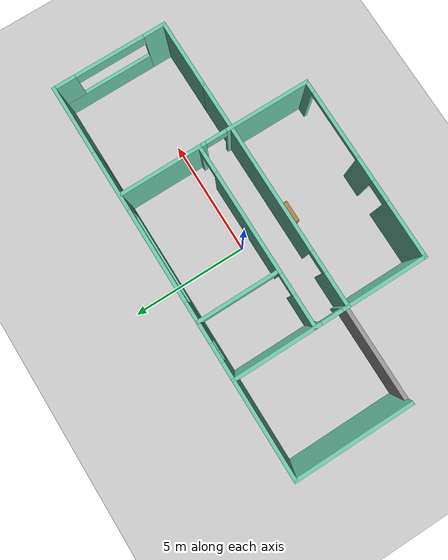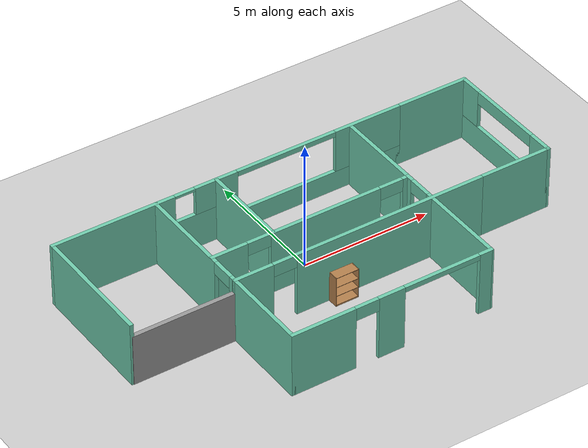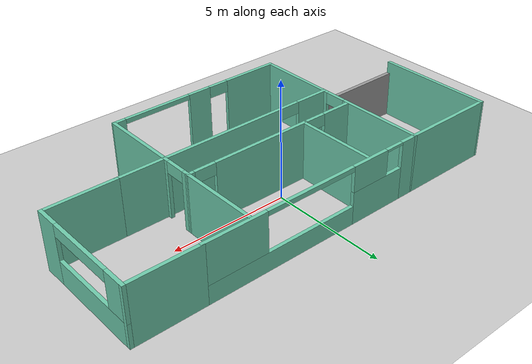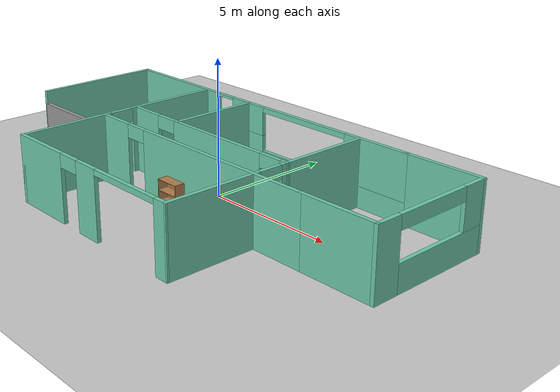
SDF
<sdf version="1.6">
 <world name="default">
  <model name="ground_plane">
   <static>1</static>
   <link name="link">
    <collision name="collision">
     <geometry><plane><normal>0 0 1</normal><size>100 100</size></plane></geometry>
     <surface>
      <contact><collide_bitmask>65535</collide_bitmask></contact>
      <friction><ode><mu>100</mu><mu2>50</mu2></ode></friction>
     </surface>
    </collision>
    <visual name="visual">
     <cast_shadows>0</cast_shadows>
     <geometry><plane><normal>0 0 1</normal><size>100 100</size></plane></geometry>
     <material>
      <script><uri>file://media/materials/scripts/gazebo.material</uri><name>Gazebo/Grey</name></script>
     </material>
    </visual>
   </link>
  </model>
  <model name="mybuilding">
   <pose>0.33074 -1.16282 0 0 -0 0</pose>
   <link name="Door_2">
    <collision name="Door_2_Collision">
     <geometry><box><size>4 0.17 2</size></box></geometry>
     <pose>0 0 1 0 -0 0</pose>
    </collision>
    <visual name="Door_2_Visual">
     <pose>0 0 1 0 -0 0</pose>
     <geometry><box><size>4 0.17 2</size></box></geometry>
     <material>
      <script><uri>file://media/materials/scripts/gazebo.material</uri><name>Gazebo/Grey</name></script>
     </material>
    </visual>
    <pose>-6.34759 -0.757622 0 0 -0 0</pose>
   </link>
   <link name="Wall_0">
    <collision name="Wall_0_Collision">
     <geometry><box><size>5 0.15 2.5</size></box></geometry>
     <pose>0 0 1.25 0 -0 0</pose>
    </collision>
    <visual name="Wall_0_Visual">
     <pose>0 0 1.25 0 -0 0</pose>
     <geometry><box><size>5 0.15 2.5</size></box></geometry>
     <material>
      <script><uri>file://media/materials/scripts/gazebo.material</uri><name>Gazebo/Grey</name></script>
      <ambient>0.435294 0.796078 0.67451 1</ambient>
     </material>
     <meta><layer>0</layer></meta>
    </visual>
    <pose>-8.35 1.67511 0 0 0 -1.5708</pose>
   </link>
   <link name="Wall_10">
    <pose>-0.425 -4.09989 0 0 -0 0</pose>
    <visual name="Wall_10_Visual_0">
     <pose>-2.74578 0 1.25 0 -0 0</pose>
     <geometry><box><size>2.50844 0.15 2.5</size></box></geometry>
     <material>
      <script><uri>file://media/materials/scripts/gazebo.material</uri><name>Gazebo/Grey</name></script>
      <ambient>0.435294 0.796078 0.67451 1</ambient>
     </material>
     <meta><layer>0</layer></meta>
    </visual>
    <collision name="Wall_10_Collision_0">
     <geometry><box><size>2.50844 0.15 2.5</size></box></geometry>
     <pose>-2.74578 0 1.25 0 -0 0</pose>
    </collision>
    <visual name="Wall_10_Visual_1">
     <pose>-0.076945 0 1.25 0 -0 0</pose>
     <geometry><box><size>1.02922 0.15 2.5</size></box></geometry>
     <material>
      <script><uri>file://media/materials/scripts/gazebo.material</uri><name>Gazebo/Grey</name></script>
      <ambient>0.435294 0.796078 0.67451 1</ambient>
     </material>
     <meta><layer>0</layer></meta>
    </visual>
    <collision name="Wall_10_Collision_1">
     <geometry><box><size>1.02922 0.15 2.5</size></box></geometry>
     <pose>-0.076945 0 1.25 0 -0 0</pose>
    </collision>
    <visual name="Wall_10_Visual_2">
     <pose>3.71883 0 1.25 0 -0 0</pose>
     <geometry><box><size>0.562334 0.15 2.5</size></box></geometry>
     <material>
      <script><uri>file://media/materials/scripts/gazebo.material</uri><name>Gazebo/Grey</name></script>
      <ambient>0.435294 0.796078 0.67451 1</ambient>
     </material>
     <meta><layer>0</layer></meta>
    </visual>
    <collision name="Wall_10_Collision_2">
     <geometry><box><size>0.562334 0.15 2.5</size></box></geometry>
     <pose>3.71883 0 1.25 0 -0 0</pose>
    </collision>
    <visual name="Wall_10_Visual_3">
     <pose>-1.04156 0 2.25 0 -0 0</pose>
     <geometry><box><size>0.9 0.15 0.5</size></box></geometry>
     <material>
      <script><uri>file://media/materials/scripts/gazebo.material</uri><name>Gazebo/Grey</name></script>
      <ambient>0.435294 0.796078 0.67451 1</ambient>
     </material>
     <meta><layer>0</layer></meta>
    </visual>
    <collision name="Wall_10_Collision_3">
     <geometry><box><size>0.9 0.15 0.5</size></box></geometry>
     <pose>-1.04156 0 2.25 0 -0 0</pose>
    </collision>
    <visual name="Wall_10_Visual_4">
     <pose>1.93767 0 2.4 0 -0 0</pose>
     <geometry><box><size>3 0.15 0.2</size></box></geometry>
     <material>
      <script><uri>file://media/materials/scripts/gazebo.material</uri><name>Gazebo/Grey</name></script>
      <ambient>0.435294 0.796078 0.67451 1</ambient>
     </material>
     <meta><layer>0</layer></meta>
    </visual>
    <collision name="Wall_10_Collision_4">
     <geometry><box><size>3 0.15 0.2</size></box></geometry>
     <pose>1.93767 0 2.4 0 -0 0</pose>
    </collision>
   </link>
   <link name="Wall_14">
    <pose>-0.411 0.65011 0 0 -0 0</pose>
    <visual name="Wall_14_Visual_0">
     <pose>-3.28166 0 1.25 0 -0 0</pose>
     <geometry><box><size>1.43667 0.15 2.5</size></box></geometry>
     <material>
      <script><uri>file://media/materials/scripts/gazebo.material</uri><name>Gazebo/Grey</name></script>
      <ambient>0.435294 0.796078 0.67451 1</ambient>
     </material>
     <meta><layer>0</layer></meta>
    </visual>
    <collision name="Wall_14_Collision_0">
     <geometry><box><size>1.43667 0.15 2.5</size></box></geometry>
     <pose>-3.28166 0 1.25 0 -0 0</pose>
    </collision>
    <visual name="Wall_14_Visual_1">
     <pose>0.543845 0 1.25 0 -0 0</pose>
     <geometry><box><size>4.41435 0.15 2.5</size></box></geometry>
     <material>
      <script><uri>file://media/materials/scripts/gazebo.material</uri><name>Gazebo/Grey</name></script>
      <ambient>0.435294 0.796078 0.67451 1</ambient>
     </material>
     <meta><layer>0</layer></meta>
    </visual>
    <collision name="Wall_14_Collision_1">
     <geometry><box><size>4.41435 0.15 2.5</size></box></geometry>
     <pose>0.543845 0 1.25 0 -0 0</pose>
    </collision>
    <visual name="Wall_14_Visual_2">
     <pose>3.8342 0 1.25 0 -0 0</pose>
     <geometry><box><size>0.33159 0.15 2.5</size></box></geometry>
     <material>
      <script><uri>file://media/materials/scripts/gazebo.material</uri><name>Gazebo/Grey</name></script>
      <ambient>0.435294 0.796078 0.67451 1</ambient>
     </material>
     <meta><layer>0</layer></meta>
    </visual>
    <collision name="Wall_14_Collision_2">
     <geometry><box><size>0.33159 0.15 2.5</size></box></geometry>
     <pose>3.8342 0 1.25 0 -0 0</pose>
    </collision>
    <visual name="Wall_14_Visual_3">
     <pose>-2.11333 0 2.25 0 -0 0</pose>
     <geometry><box><size>0.9 0.15 0.5</size></box></geometry>
     <material>
      <script><uri>file://media/materials/scripts/gazebo.material</uri><name>Gazebo/Grey</name></script>
      <ambient>0.435294 0.796078 0.67451 1</ambient>
     </material>
     <meta><layer>0</layer></meta>
    </visual>
    <collision name="Wall_14_Collision_3">
     <geometry><box><size>0.9 0.15 0.5</size></box></geometry>
     <pose>-2.11333 0 2.25 0 -0 0</pose>
    </collision>
    <visual name="Wall_14_Visual_4">
     <pose>3.20971 0 2.25 0 -0 0</pose>
     <geometry><box><size>0.917391 0.15 0.5</size></box></geometry>
     <material>
      <script><uri>file://media/materials/scripts/gazebo.material</uri><name>Gazebo/Grey</name></script>
      <ambient>0.435294 0.796078 0.67451 1</ambient>
     </material>
     <meta><layer>0</layer></meta>
    </visual>
    <collision name="Wall_14_Collision_4">
     <geometry><box><size>0.917391 0.15 0.5</size></box></geometry>
     <pose>3.20971 0 2.25 0 -0 0</pose>
    </collision>
   </link>
   <link name="Wall_17">
    <pose>3.507 -1.72489 0 0 0 -1.57374</pose>
    <visual name="Wall_17_Visual_0">
     <pose>-2.27636 0 1.25 0 -0 0</pose>
     <geometry><box><size>0.347298 0.15 2.5</size></box></geometry>
     <material>
      <script><uri>file://media/materials/scripts/gazebo.material</uri><name>Gazebo/Grey</name></script>
      <ambient>0.435294 0.796078 0.67451 1</ambient>
     </material>
     <meta><layer>0</layer></meta>
    </visual>
    <collision name="Wall_17_Collision_0">
     <geometry><box><size>0.347298 0.15 2.5</size></box></geometry>
     <pose>-2.27636 0 1.25 0 -0 0</pose>
    </collision>
    <visual name="Wall_17_Visual_1">
     <pose>0.623649 0 1.25 0 -0 0</pose>
     <geometry><box><size>3.65272 0.15 2.5</size></box></geometry>
     <material>
      <script><uri>file://media/materials/scripts/gazebo.material</uri><name>Gazebo/Grey</name></script>
      <ambient>0.435294 0.796078 0.67451 1</ambient>
     </material>
     <meta><layer>0</layer></meta>
    </visual>
    <collision name="Wall_17_Collision_1">
     <geometry><box><size>3.65272 0.15 2.5</size></box></geometry>
     <pose>0.623649 0 1.25 0 -0 0</pose>
    </collision>
    <visual name="Wall_17_Visual_2">
     <pose>-1.65271 0 2.25 0 -0 0</pose>
     <geometry><box><size>0.9 0.15 0.5</size></box></geometry>
     <material>
      <script><uri>file://media/materials/scripts/gazebo.material</uri><name>Gazebo/Grey</name></script>
      <ambient>0.435294 0.796078 0.67451 1</ambient>
     </material>
     <meta><layer>0</layer></meta>
    </visual>
    <collision name="Wall_17_Collision_2">
     <geometry><box><size>0.9 0.15 0.5</size></box></geometry>
     <pose>-1.65271 0 2.25 0 -0 0</pose>
    </collision>
   </link>
   <link name="Wall_19">
    <collision name="Wall_19_Collision">
     <geometry><box><size>3 0.15 2.5</size></box></geometry>
     <pose>0 0 1.25 0 -0 0</pose>
    </collision>
    <visual name="Wall_19_Visual">
     <pose>0 0 1.25 0 -0 0</pose>
     <geometry><box><size>3 0.15 2.5</size></box></geometry>
     <material>
      <script><uri>file://media/materials/scripts/gazebo.material</uri><name>Gazebo/Grey</name></script>
      <ambient>0.435294 0.796078 0.67451 1</ambient>
     </material>
     <meta><layer>0</layer></meta>
    </visual>
    <pose>6.925 -0.74989 0 0 -0 0</pose>
   </link>
   <link name="Wall_20">
    <pose>8.35 1.67511 0 0 -0 1.5708</pose>
    <visual name="Wall_20_Visual_0">
     <pose>-2.00018 0 1.25 0 -0 0</pose>
     <geometry><box><size>0.999645 0.15 2.5</size></box></geometry>
     <material>
      <script><uri>file://media/materials/scripts/gazebo.material</uri><name>Gazebo/Grey</name></script>
      <ambient>0.435294 0.796078 0.67451 1</ambient>
     </material>
     <meta><layer>0</layer></meta>
    </visual>
    <collision name="Wall_20_Collision_0">
     <geometry><box><size>0.999645 0.15 2.5</size></box></geometry>
     <pose>-2.00018 0 1.25 0 -0 0</pose>
    </collision>
    <visual name="Wall_20_Visual_1">
     <pose>0.499822 0 0.5 0 -0 0</pose>
     <geometry><box><size>4.00035 0.15 1</size></box></geometry>
     <material>
      <script><uri>file://media/materials/scripts/gazebo.material</uri><name>Gazebo/Grey</name></script>
      <ambient>0.435294 0.796078 0.67451 1</ambient>
     </material>
     <meta><layer>0</layer></meta>
    </visual>
    <collision name="Wall_20_Collision_1">
     <geometry><box><size>4.00035 0.15 1</size></box></geometry>
     <pose>0.499822 0 0.5 0 -0 0</pose>
    </collision>
    <visual name="Wall_20_Visual_2">
     <pose>1.99982 0 1.75 0 -0 0</pose>
     <geometry><box><size>1.00036 0.15 1.5</size></box></geometry>
     <material>
      <script><uri>file://media/materials/scripts/gazebo.material</uri><name>Gazebo/Grey</name></script>
      <ambient>0.435294 0.796078 0.67451 1</ambient>
     </material>
     <meta><layer>0</layer></meta>
    </visual>
    <collision name="Wall_20_Collision_2">
     <geometry><box><size>1.00036 0.15 1.5</size></box></geometry>
     <pose>1.99982 0 1.75 0 -0 0</pose>
    </collision>
    <visual name="Wall_20_Visual_3">
     <pose>-0.000355 0 2.25 0 -0 0</pose>
     <geometry><box><size>3 0.15 0.5</size></box></geometry>
     <material>
      <script><uri>file://media/materials/scripts/gazebo.material</uri><name>Gazebo/Grey</name></script>
      <ambient>0.435294 0.796078 0.67451 1</ambient>
     </material>
     <meta><layer>0</layer></meta>
    </visual>
    <collision name="Wall_20_Collision_3">
     <geometry><box><size>3 0.15 0.5</size></box></geometry>
     <pose>-0.000355 0 2.25 0 -0 0</pose>
    </collision>
   </link>
   <link name="Wall_21">
    <collision name="Wall_21_Collision">
     <geometry><box><size>3 0.15 2.5</size></box></geometry>
     <pose>0 0 1.25 0 -0 0</pose>
    </collision>
    <visual name="Wall_21_Visual">
     <pose>0 0 1.25 0 -0 0</pose>
     <geometry><box><size>3 0.15 2.5</size></box></geometry>
     <material>
      <script><uri>file://media/materials/scripts/gazebo.material</uri><name>Gazebo/Grey</name></script>
      <ambient>0.435294 0.796078 0.67451 1</ambient>
     </material>
     <meta><layer>0</layer></meta>
    </visual>
    <pose>6.925 4.10011 0 0 -0 3.14159</pose>
   </link>
   <link name="Wall_23">
    <collision name="Wall_23_Collision">
     <geometry><box><size>3.5 0.15 2.5</size></box></geometry>
     <pose>0 0 1.25 0 -0 0</pose>
    </collision>
    <visual name="Wall_23_Visual">
     <pose>0 0 1.25 0 -0 0</pose>
     <geometry><box><size>3.5 0.15 2.5</size></box></geometry>
     <material>
      <script><uri>file://media/materials/scripts/gazebo.material</uri><name>Gazebo/Grey</name></script>
      <ambient>0.435294 0.796078 0.67451 1</ambient>
     </material>
     <meta><layer>0</layer></meta>
    </visual>
    <pose>3.514 2.32511 0 0 -0 1.5708</pose>
   </link>
   <link name="Wall_27">
    <collision name="Wall_27_Collision">
     <geometry><box><size>3.5 0.15 2.5</size></box></geometry>
     <pose>0 0 1.25 0 -0 0</pose>
    </collision>
    <visual name="Wall_27_Visual">
     <pose>0 0 1.25 0 -0 0</pose>
     <geometry><box><size>3.5 0.15 2.5</size></box></geometry>
     <material>
      <script><uri>file://media/materials/scripts/gazebo.material</uri><name>Gazebo/Grey</name></script>
      <ambient>0.435294 0.796078 0.67451 1</ambient>
     </material>
     <meta><layer>0</layer></meta>
    </visual>
    <pose>-1.94606 2.37639 0 0 -0 1.5708</pose>
   </link>
   <link name="Wall_3">
    <pose>-1.425 4.10011 0 0 -0 0</pose>
    <visual name="Wall_3_Visual_0">
     <pose>-4.59858 0 1.25 0 -0 0</pose>
     <geometry><box><size>4.80283 0.15 2.5</size></box></geometry>
     <material>
      <script><uri>file://media/materials/scripts/gazebo.material</uri><name>Gazebo/Grey</name></script>
      <ambient>0.435294 0.796078 0.67451 1</ambient>
     </material>
     <meta><layer>0</layer></meta>
    </visual>
    <collision name="Wall_3_Collision_0">
     <geometry><box><size>4.80283 0.15 2.5</size></box></geometry>
     <pose>-4.59858 0 1.25 0 -0 0</pose>
    </collision>
    <visual name="Wall_3_Visual_1">
     <pose>-0.948954 0 0.7 0 -0 0</pose>
     <geometry><box><size>2.49643 0.15 1.4</size></box></geometry>
     <material>
      <script><uri>file://media/materials/scripts/gazebo.material</uri><name>Gazebo/Grey</name></script>
      <ambient>0.435294 0.796078 0.67451 1</ambient>
     </material>
     <meta><layer>0</layer></meta>
    </visual>
    <collision name="Wall_3_Collision_1">
     <geometry><box><size>2.49643 0.15 1.4</size></box></geometry>
     <pose>-0.948954 0 0.7 0 -0 0</pose>
    </collision>
    <visual name="Wall_3_Visual_2">
     <pose>3.64963 0 0.4 0 -0 0</pose>
     <geometry><box><size>6.70074 0.15 0.8</size></box></geometry>
     <material>
      <script><uri>file://media/materials/scripts/gazebo.material</uri><name>Gazebo/Grey</name></script>
      <ambient>0.435294 0.796078 0.67451 1</ambient>
     </material>
     <meta><layer>0</layer></meta>
    </visual>
    <collision name="Wall_3_Collision_2">
     <geometry><box><size>6.70074 0.15 0.8</size></box></geometry>
     <pose>3.64963 0 0.4 0 -0 0</pose>
    </collision>
    <visual name="Wall_3_Visual_3">
     <pose>5.64963 0 1.65 0 -0 0</pose>
     <geometry><box><size>2.70074 0.15 1.7</size></box></geometry>
     <material>
      <script><uri>file://media/materials/scripts/gazebo.material</uri><name>Gazebo/Grey</name></script>
      <ambient>0.435294 0.796078 0.67451 1</ambient>
     </material>
     <meta><layer>0</layer></meta>
    </visual>
    <collision name="Wall_3_Collision_3">
     <geometry><box><size>2.70074 0.15 1.7</size></box></geometry>
     <pose>5.64963 0 1.65 0 -0 0</pose>
    </collision>
    <visual name="Wall_3_Visual_4">
     <pose>-0.548954 0 1.95 0 -0 0</pose>
     <geometry><box><size>1.69643 0.15 1.1</size></box></geometry>
     <material>
      <script><uri>file://media/materials/scripts/gazebo.material</uri><name>Gazebo/Grey</name></script>
      <ambient>0.435294 0.796078 0.67451 1</ambient>
     </material>
     <meta><layer>0</layer></meta>
    </visual>
    <collision name="Wall_3_Collision_4">
     <geometry><box><size>1.69643 0.15 1.1</size></box></geometry>
     <pose>-0.548954 0 1.95 0 -0 0</pose>
    </collision>
    <visual name="Wall_3_Visual_5">
     <pose>2.29926 0 2.4 0 -0 0</pose>
     <geometry><box><size>4 0.15 0.2</size></box></geometry>
     <material>
      <script><uri>file://media/materials/scripts/gazebo.material</uri><name>Gazebo/Grey</name></script>
      <ambient>0.435294 0.796078 0.67451 1</ambient>
     </material>
     <meta><layer>0</layer></meta>
    </visual>
    <collision name="Wall_3_Collision_5">
     <geometry><box><size>4 0.15 0.2</size></box></geometry>
     <pose>2.29926 0 2.4 0 -0 0</pose>
    </collision>
    <visual name="Wall_3_Visual_6">
     <pose>-1.79717 0 2.45 0 -0 0</pose>
     <geometry><box><size>0.8 0.15 0.1</size></box></geometry>
     <material>
      <script><uri>file://media/materials/scripts/gazebo.material</uri><name>Gazebo/Grey</name></script>
      <ambient>0.435294 0.796078 0.67451 1</ambient>
     </material>
     <meta><layer>0</layer></meta>
    </visual>
    <collision name="Wall_3_Collision_6">
     <geometry><box><size>0.8 0.15 0.1</size></box></geometry>
     <pose>-1.79717 0 2.45 0 -0 0</pose>
    </collision>
   </link>
   <link name="Wall_5">
    <pose>0.575 -0.74989 0 0 -0 3.14159</pose>
    <visual name="Wall_5_Visual_0">
     <pose>-1.2216 0 1.25 0 -0 0</pose>
     <geometry><box><size>7.55681 0.15 2.5</size></box></geometry>
     <material>
      <script><uri>file://media/materials/scripts/gazebo.material</uri><name>Gazebo/Grey</name></script>
      <ambient>0.435294 0.796078 0.67451 1</ambient>
     </material>
     <meta><layer>0</layer></meta>
    </visual>
    <collision name="Wall_5_Collision_0">
     <geometry><box><size>7.55681 0.15 2.5</size></box></geometry>
     <pose>-1.2216 0 1.25 0 -0 0</pose>
    </collision>
    <visual name="Wall_5_Visual_1">
     <pose>4.2284 0 1.25 0 -0 0</pose>
     <geometry><box><size>1.54319 0.15 2.5</size></box></geometry>
     <material>
      <script><uri>file://media/materials/scripts/gazebo.material</uri><name>Gazebo/Grey</name></script>
      <ambient>0.435294 0.796078 0.67451 1</ambient>
     </material>
     <meta><layer>0</layer></meta>
    </visual>
    <collision name="Wall_5_Collision_1">
     <geometry><box><size>1.54319 0.15 2.5</size></box></geometry>
     <pose>4.2284 0 1.25 0 -0 0</pose>
    </collision>
    <visual name="Wall_5_Visual_2">
     <pose>3.00681 0 2.25 0 -0 0</pose>
     <geometry><box><size>0.9 0.15 0.5</size></box></geometry>
     <material>
      <script><uri>file://media/materials/scripts/gazebo.material</uri><name>Gazebo/Grey</name></script>
      <ambient>0.435294 0.796078 0.67451 1</ambient>
     </material>
     <meta><layer>0</layer></meta>
    </visual>
    <collision name="Wall_5_Collision_2">
     <geometry><box><size>0.9 0.15 0.5</size></box></geometry>
     <pose>3.00681 0 2.25 0 -0 0</pose>
    </collision>
   </link>
   <link name="Wall_6">
    <pose>-4.35 1.67511 0 0 -0 1.5708</pose>
    <visual name="Wall_6_Visual_0">
     <pose>-2.34352 0 1.25 0 -0 0</pose>
     <geometry><box><size>0.312969 0.15 2.5</size></box></geometry>
     <material>
      <script><uri>file://media/materials/scripts/gazebo.material</uri><name>Gazebo/Grey</name></script>
      <ambient>0.435294 0.796078 0.67451 1</ambient>
     </material>
     <meta><layer>0</layer></meta>
    </visual>
    <collision name="Wall_6_Collision_0">
     <geometry><box><size>0.312969 0.15 2.5</size></box></geometry>
     <pose>-2.34352 0 1.25 0 -0 0</pose>
    </collision>
    <visual name="Wall_6_Visual_1">
     <pose>0.606485 0 1.25 0 -0 0</pose>
     <geometry><box><size>3.78703 0.15 2.5</size></box></geometry>
     <material>
      <script><uri>file://media/materials/scripts/gazebo.material</uri><name>Gazebo/Grey</name></script>
      <ambient>0.435294 0.796078 0.67451 1</ambient>
     </material>
     <meta><layer>0</layer></meta>
    </visual>
    <collision name="Wall_6_Collision_1">
     <geometry><box><size>3.78703 0.15 2.5</size></box></geometry>
     <pose>0.606485 0 1.25 0 -0 0</pose>
    </collision>
    <visual name="Wall_6_Visual_2">
     <pose>-1.73703 0 2.25 0 -0 0</pose>
     <geometry><box><size>0.9 0.15 0.5</size></box></geometry>
     <material>
      <script><uri>file://media/materials/scripts/gazebo.material</uri><name>Gazebo/Grey</name></script>
      <ambient>0.435294 0.796078 0.67451 1</ambient>
     </material>
     <meta><layer>0</layer></meta>
    </visual>
    <collision name="Wall_6_Collision_2">
     <geometry><box><size>0.9 0.15 0.5</size></box></geometry>
     <pose>-1.73703 0 2.25 0 -0 0</pose>
    </collision>
   </link>
   <link name="Wall_9">
    <collision name="Wall_9_Collision">
     <geometry><box><size>3.5 0.15 2.5</size></box></geometry>
     <pose>0 0 1.25 0 -0 0</pose>
    </collision>
    <visual name="Wall_9_Visual">
     <pose>0 0 1.25 0 -0 0</pose>
     <geometry><box><size>3.5 0.15 2.5</size></box></geometry>
     <material>
      <script><uri>file://media/materials/scripts/gazebo.material</uri><name>Gazebo/Grey</name></script>
      <ambient>0.435294 0.796078 0.67451 1</ambient>
     </material>
     <meta><layer>0</layer></meta>
    </visual>
    <pose>-4.35 -2.42489 0 0 0 -1.5708</pose>
   </link>
   <static>1</static>
  </model>
  <model name="bookshelf">
   <static>1</static>
   <link name="link">
    <inertial><mass>1</mass></inertial>
    <collision name="back">
     <pose>0 0.005 0.6 0 -0 0</pose>
     <geometry><box><size>0.9 0.01 1.2</size></box></geometry>
    </collision>
    <visual name="visual1">
     <pose>0 0.005 0.6 0 -0 0</pose>
     <geometry><box><size>0.9 0.01 1.2</size></box></geometry>
     <material>
      <script><uri>file://media/materials/scripts/gazebo.material</uri><name>Gazebo/Wood</name></script>
     </material>
    </visual>
    <collision name="left_side">
     <pose>0.45 -0.195 0.6 0 -0 0</pose>
     <geometry><box><size>0.02 0.4 1.2</size></box></geometry>
    </collision>
    <visual name="visual2">
     <pose>0.45 -0.195 0.6 0 -0 0</pose>
     <geometry><box><size>0.02 0.4 1.2</size></box></geometry>
     <material>
      <script><uri>file://media/materials/scripts/gazebo.material</uri><name>Gazebo/Wood</name></script>
     </material>
    </visual>
    <collision name="right_side">
     <pose>-0.45 -0.195 0.6 0 -0 0</pose>
     <geometry><box><size>0.02 0.4 1.2</size></box></geometry>
    </collision>
    <visual name="visual3">
     <pose>-0.45 -0.195 0.6 0 -0 0</pose>
     <geometry><box><size>0.02 0.4 1.2</size></box></geometry>
     <material>
      <script><uri>file://media/materials/scripts/gazebo.material</uri><name>Gazebo/Wood</name></script>
     </material>
    </visual>
    <collision name="bottom">
     <pose>0 -0.195 0.03 0 -0 0</pose>
     <geometry><box><size>0.88 0.4 0.06</size></box></geometry>
    </collision>
    <visual name="visual4">
     <pose>0 -0.195 0.03 0 -0 0</pose>
     <geometry><box><size>0.88 0.4 0.06</size></box></geometry>
     <material>
      <script><uri>file://media/materials/scripts/gazebo.material</uri><name>Gazebo/Wood</name></script>
     </material>
    </visual>
    <collision name="top">
     <pose>0 -0.195 1.19 0 -0 0</pose>
     <geometry><box><size>0.88 0.4 0.02</size></box></geometry>
    </collision>
    <visual name="visual5">
     <pose>0 -0.195 1.19 0 -0 0</pose>
     <geometry><box><size>0.88 0.4 0.02</size></box></geometry>
     <material>
      <script><uri>file://media/materials/scripts/gazebo.material</uri><name>Gazebo/Wood</name></script>
     </material>
    </visual>
    <collision name="low_shelf">
     <pose>0 -0.195 0.43 0 -0 0</pose>
     <geometry><box><size>0.88 0.4 0.02</size></box></geometry>
    </collision>
    <visual name="visual6">
     <pose>0 -0.195 0.43 0 -0 0</pose>
     <geometry><box><size>0.88 0.4 0.02</size></box></geometry>
     <material>
      <script><uri>file://media/materials/scripts/gazebo.material</uri><name>Gazebo/Wood</name></script>
     </material>
    </visual>
    <collision name="high_shelf">
     <pose>0 -0.195 0.8 0 -0 0</pose>
     <geometry><box><size>0.88 0.4 0.02</size></box></geometry>
    </collision>
    <visual name="visual7">
     <pose>0 -0.195 0.8 0 -0 0</pose>
     <geometry><box><size>0.88 0.4 0.02</size></box></geometry>
     <material>
      <script><uri>file://media/materials/scripts/gazebo.material</uri><name>Gazebo/Wood</name></script>
     </material>
    </visual>
   </link>
   <pose>0.103204 -1.99247 0 0 -0 0</pose>
  </model>
 </world>
</sdf>
